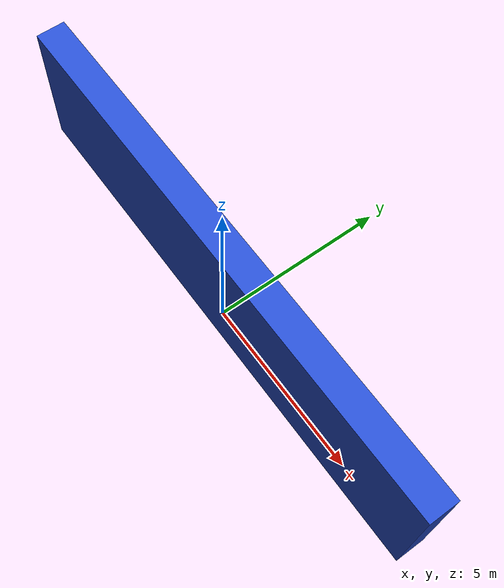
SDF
<?xml version="1.0" ?>
<sdf version="1.5">
  <model name="maze_wall_low">
    <static>true</static>
    <link name="lowlink">
      <pose>0 0 2 0 0 0</pose>
      <collision name="collision_l">
        <geometry>
          <box>
            <size>15 0.8 4</size>
          </box>
        </geometry>
      </collision>
      <visual name="visual_l">
        <geometry>
          <box>
            <size>15 0.8 4</size>
          </box>
        </geometry>
        <material>
          <script>
            <name>Gazebo/Blue</name>
            <uri>file://media/materials/scripts/gazebo.material</uri>
          </script>
        </material>
      </visual>
    </link>
  </model>
</sdf>
